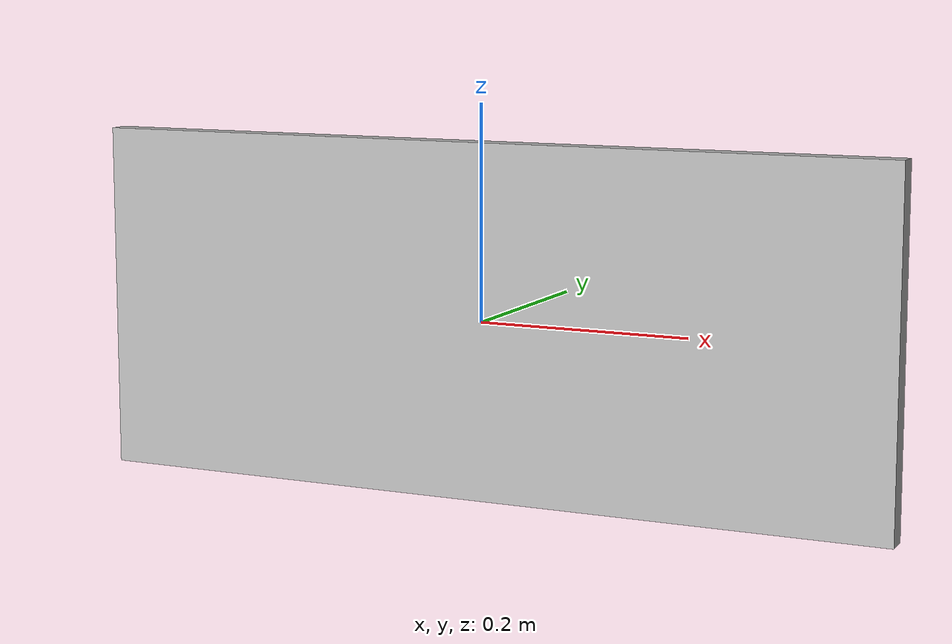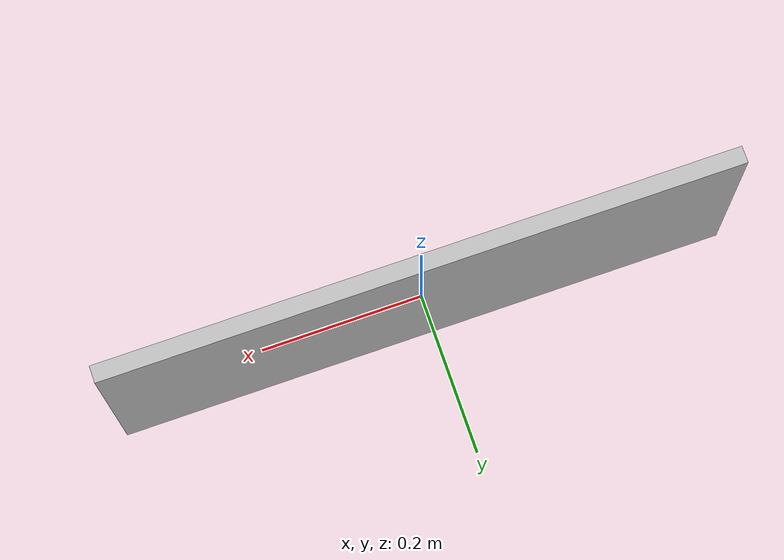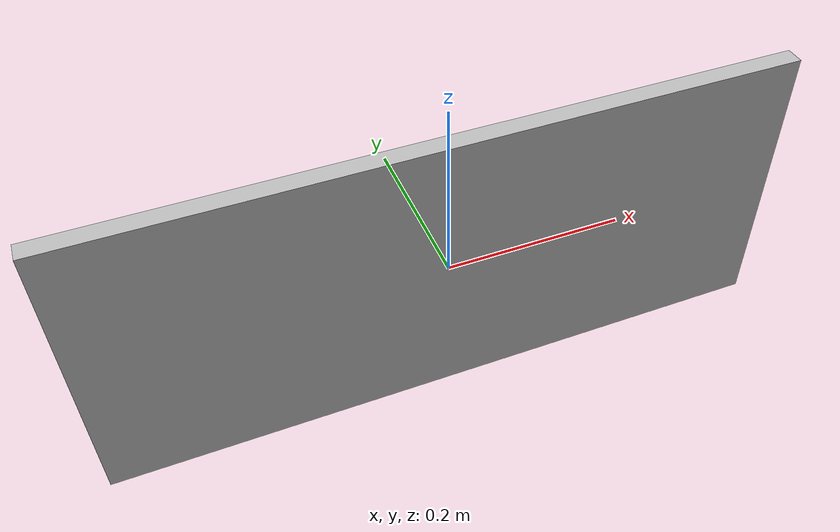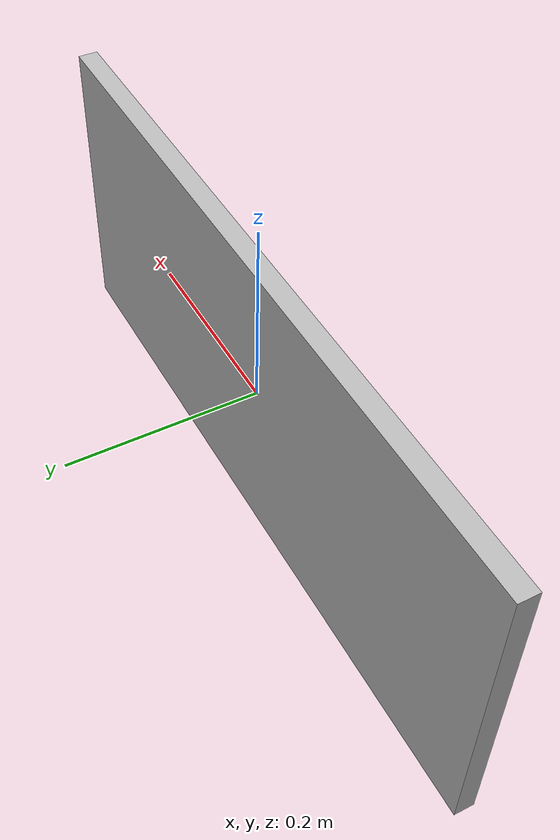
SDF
<?xml version='1.0'?>
<sdf version='1.7'>
  <model name='plastic_label'>
    <link name='link_0'>
      <inertial>
        <mass>0.00537819</mass>
        <inertia>
          <ixx>4.91369e-05</ixx>
          <ixy>0</ixy>
          <ixz>0</ixz>
          <iyy>0.000322519</iyy>
          <iyz>0</iyz>
          <izz>0.000273773</izz>
        </inertia>
        <pose>0 0 0 0 -0 0</pose>
      </inertial>
      <pose>-0 1e-06 0 0 -0 0</pose>
      <visual name='visual'>
        <pose>0 0 0 0 -0 0</pose>
        <geometry>
          <box>
            <size>0.781291 0.020861 0.330455</size>
          </box>
        </geometry>
        <material>
          <lighting>1</lighting>
          <script>
            <uri>model://plastic_label/materials/scripts</uri>
            <uri>model://plastic_label/materials/textures</uri>
            <name>Plastic_label/Plastic_label</name>
          </script>
          <shader type='pixel'/>
        </material>
        <transparency>0</transparency>
        <cast_shadows>1</cast_shadows>
      </visual>
      <collision name='collision'>
        <laser_retro>0</laser_retro>
        <max_contacts>10</max_contacts>
        <pose>0 0 0 0 -0 0</pose>
        <geometry>
          <box>
            <size>0.781291 0.020861 0.330455</size>
          </box>
        </geometry>
        <surface>
          <friction>
            <ode>
              <mu>1</mu>
              <mu2>1</mu2>
              <fdir1>0 0 0</fdir1>
              <slip1>0</slip1>
              <slip2>0</slip2>
            </ode>
            <torsional>
              <coefficient>1</coefficient>
              <patch_radius>0</patch_radius>
              <surface_radius>0</surface_radius>
              <use_patch_radius>1</use_patch_radius>
              <ode>
                <slip>0</slip>
              </ode>
            </torsional>
          </friction>
          <bounce>
            <restitution_coefficient>0</restitution_coefficient>
            <threshold>1e+06</threshold>
          </bounce>
          <contact>
            <collide_without_contact>0</collide_without_contact>
            <collide_without_contact_bitmask>1</collide_without_contact_bitmask>
            <collide_bitmask>1</collide_bitmask>
            <ode>
              <soft_cfm>0</soft_cfm>
              <soft_erp>0.2</soft_erp>
              <kp>1e+13</kp>
              <kd>1</kd>
              <max_vel>0.01</max_vel>
              <min_depth>0</min_depth>
            </ode>
            <bullet>
              <split_impulse>1</split_impulse>
              <split_impulse_penetration_threshold>-0.01</split_impulse_penetration_threshold>
              <soft_cfm>0</soft_cfm>
              <soft_erp>0.2</soft_erp>
              <kp>1e+13</kp>
              <kd>1</kd>
            </bullet>
          </contact>
        </surface>
      </collision>
    </link>
    <static>true</static>
    <allow_auto_disable>1</allow_auto_disable>
  </model>
</sdf>
